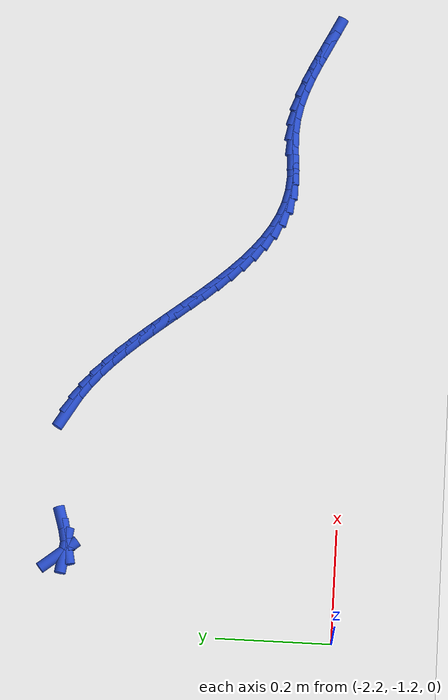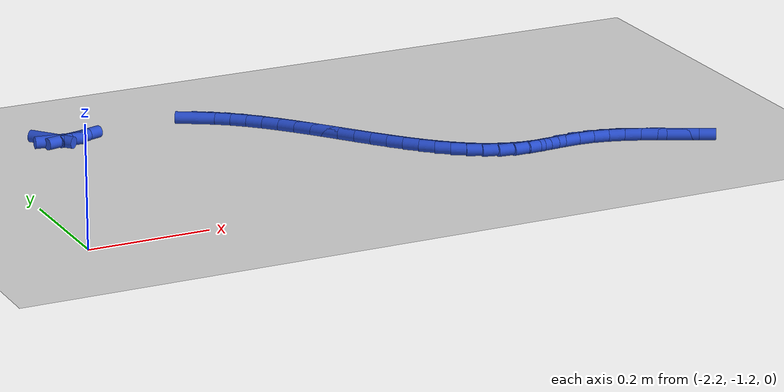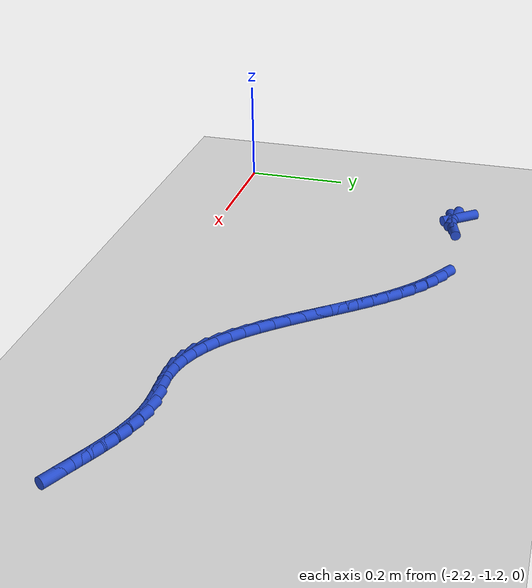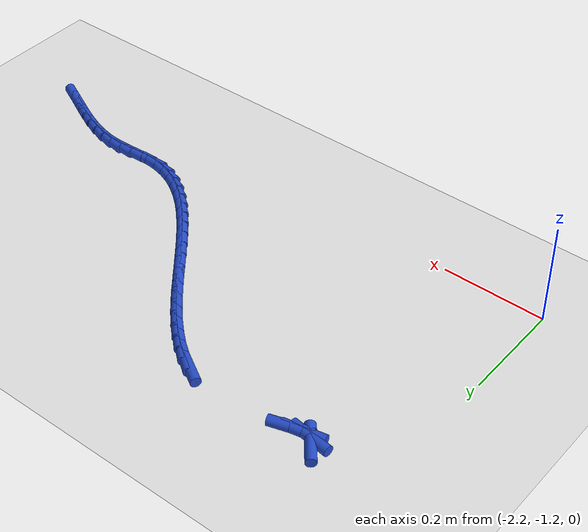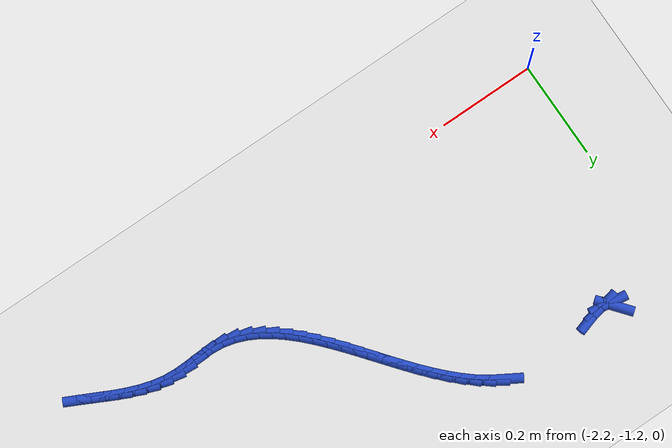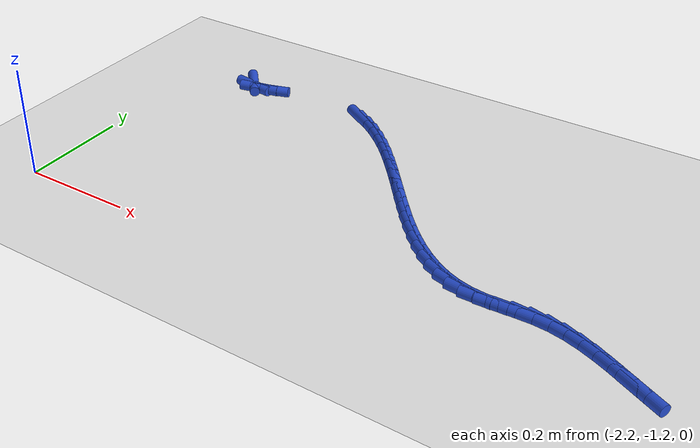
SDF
<sdf version="1.6">
 <world name="default">
  <model name="ground_plane">
   <static>1</static>
   <link name="link">
    <collision name="collision">
     <geometry><plane><normal>0 0 1</normal><size>100 100</size></plane></geometry>
     <surface><friction><ode><mu>100</mu><mu2>50</mu2></ode></friction></surface>
    </collision>
    <visual name="visual">
     <cast_shadows>0</cast_shadows>
     <geometry><plane><normal>0 0 1</normal><size>100 100</size></plane></geometry>
     <material>
      <script><uri>file://media/materials/scripts/gazebo.material</uri><name>Gazebo/WhiteGlow</name></script>
     </material>
    </visual>
   </link>
  </model>
  <model name="line">
   <link name="link_175">
    <pose>-2.069091002222434 -0.7225631608510045 0.01 0 1.57 -0.8910142239809765</pose>
    <collision name="collision">
     <geometry><cylinder><radius>0.01</radius><length>0.08</length></cylinder></geometry>
    </collision>
    <visual name="visual">
     <material>
      <script><name>Gazebo/Blue</name><uri>file://media/materials/scripts/gazebo.material</uri></script>
     </material>
     <geometry><cylinder><radius>0.01</radius><length>0.08</length></cylinder></geometry>
    </visual>
   </link>
   <link name="link_176">
    <pose>-2.061280213596934 -0.7322263780565038 0.01 0 1.57 -0.13727164159127814</pose>
    <collision name="collision">
     <geometry><cylinder><radius>0.01</radius><length>0.08</length></cylinder></geometry>
    </collision>
    <visual name="visual">
     <material>
      <script><name>Gazebo/Blue</name><uri>file://media/materials/scripts/gazebo.material</uri></script>
     </material>
     <geometry><cylinder><radius>0.01</radius><length>0.08</length></cylinder></geometry>
    </visual>
   </link>
   <link name="link_177">
    <pose>-2.046067383426169 -0.7343278847556267 0.01 0 1.57 0.199039119528573</pose>
    <collision name="collision">
     <geometry><cylinder><radius>0.01</radius><length>0.08</length></cylinder></geometry>
    </collision>
    <visual name="visual">
     <material>
      <script><name>Gazebo/Blue</name><uri>file://media/materials/scripts/gazebo.material</uri></script>
     </material>
     <geometry><cylinder><radius>0.01</radius><length>0.08</length></cylinder></geometry>
    </visual>
   </link>
   <link name="link_178">
    <pose>-2.024020899677037 -0.7298808914803425 0.01 0 1.57 0.29614040401055103</pose>
    <collision name="collision">
     <geometry><cylinder><radius>0.01</radius><length>0.08</length></cylinder></geometry>
    </collision>
    <visual name="visual">
     <material>
      <script><name>Gazebo/Blue</name><uri>file://media/materials/scripts/gazebo.material</uri></script>
     </material>
     <geometry><cylinder><radius>0.01</radius><length>0.08</length></cylinder></geometry>
    </visual>
   </link>
   <link name="link_186">
    <pose>-1.8107640060858232 -0.7272685316404454 0.01 0 1.57 -0.5370301628846509</pose>
    <collision name="collision">
     <geometry><cylinder><radius>0.01</radius><length>0.08</length></cylinder></geometry>
    </collision>
    <visual name="visual">
     <material>
      <script><name>Gazebo/Blue</name><uri>file://media/materials/scripts/gazebo.material</uri></script>
     </material>
     <geometry><cylinder><radius>0.01</radius><length>0.08</length></cylinder></geometry>
    </visual>
   </link>
   <link name="link_187">
    <pose>-1.7882883745338554 -0.7406505190353218 0.01 0 1.57 -0.6277333505533951</pose>
    <collision name="collision">
     <geometry><cylinder><radius>0.01</radius><length>0.08</length></cylinder></geometry>
    </collision>
    <visual name="visual">
     <material>
      <script><name>Gazebo/Blue</name><uri>file://media/materials/scripts/gazebo.material</uri></script>
     </material>
     <geometry><cylinder><radius>0.01</radius><length>0.08</length></cylinder></geometry>
    </visual>
   </link>
   <link name="link_188">
    <pose>-1.7666334416525689 -0.7563643957905298 0.01 0 1.57 -0.7030701546466752</pose>
    <collision name="collision">
     <geometry><cylinder><radius>0.01</radius><length>0.08</length></cylinder></geometry>
    </collision>
    <visual name="visual">
     <material>
      <script><name>Gazebo/Blue</name><uri>file://media/materials/scripts/gazebo.material</uri></script>
     </material>
     <geometry><cylinder><radius>0.01</radius><length>0.08</length></cylinder></geometry>
    </visual>
   </link>
   <link name="link_189">
    <pose>-1.745701196559582 -0.7741055259596078 0.01 0 1.57 -0.7641845336459393</pose>
    <collision name="collision">
     <geometry><cylinder><radius>0.01</radius><length>0.08</length></cylinder></geometry>
    </collision>
    <visual name="visual">
     <material>
      <script><name>Gazebo/Blue</name><uri>file://media/materials/scripts/gazebo.material</uri></script>
     </material>
     <geometry><cylinder><radius>0.01</radius><length>0.08</length></cylinder></geometry>
    </visual>
   </link>
   <link name="link_190">
    <pose>-1.7253936283725169 -0.793569273596094 0.01 0 1.57 -0.8124637551409584</pose>
    <collision name="collision">
     <geometry><cylinder><radius>0.01</radius><length>0.08</length></cylinder></geometry>
    </collision>
    <visual name="visual">
     <material>
      <script><name>Gazebo/Blue</name><uri>file://media/materials/scripts/gazebo.material</uri></script>
     </material>
     <geometry><cylinder><radius>0.01</radius><length>0.08</length></cylinder></geometry>
    </visual>
   </link>
   <link name="link_191">
    <pose>-1.7056127262089935 -0.8144510027535266 0.01 0 1.57 -0.8492290797008747</pose>
    <collision name="collision">
     <geometry><cylinder><radius>0.01</radius><length>0.08</length></cylinder></geometry>
    </collision>
    <visual name="visual">
     <material>
      <script><name>Gazebo/Blue</name><uri>file://media/materials/scripts/gazebo.material</uri></script>
     </material>
     <geometry><cylinder><radius>0.01</radius><length>0.08</length></cylinder></geometry>
    </visual>
   </link>
   <link name="link_192">
    <pose>-1.686260479186633 -0.8364460774854443 0.01 0 1.57 -0.8755807754301844</pose>
    <collision name="collision">
     <geometry><cylinder><radius>0.01</radius><length>0.08</length></cylinder></geometry>
    </collision>
    <visual name="visual">
     <material>
      <script><name>Gazebo/Blue</name><uri>file://media/materials/scripts/gazebo.material</uri></script>
     </material>
     <geometry><cylinder><radius>0.01</radius><length>0.08</length></cylinder></geometry>
    </visual>
   </link>
   <link name="link_193">
    <pose>-1.6672388764230568 -0.8592498618453859 0.01 0 1.57 -0.8923337911449971</pose>
    <collision name="collision">
     <geometry><cylinder><radius>0.01</radius><length>0.08</length></cylinder></geometry>
    </collision>
    <visual name="visual">
     <material>
      <script><name>Gazebo/Blue</name><uri>file://media/materials/scripts/gazebo.material</uri></script>
     </material>
     <geometry><cylinder><radius>0.01</radius><length>0.08</length></cylinder></geometry>
    </visual>
   </link>
   <link name="link_194">
    <pose>-1.648449907035885 -0.8825577198868891 0.01 0 1.57 -0.8999972501788079</pose>
    <collision name="collision">
     <geometry><cylinder><radius>0.01</radius><length>0.08</length></cylinder></geometry>
    </collision>
    <visual name="visual">
     <material>
      <script><name>Gazebo/Blue</name><uri>file://media/materials/scripts/gazebo.material</uri></script>
     </material>
     <geometry><cylinder><radius>0.01</radius><length>0.08</length></cylinder></geometry>
    </visual>
   </link>
   <link name="link_195">
    <pose>-1.6297955601427385 -0.9060650156634927 0.01 0 1.57 -0.8987618767656113</pose>
    <collision name="collision">
     <geometry><cylinder><radius>0.01</radius><length>0.08</length></cylinder></geometry>
    </collision>
    <visual name="visual">
     <material>
      <script><name>Gazebo/Blue</name><uri>file://media/materials/scripts/gazebo.material</uri></script>
     </material>
     <geometry><cylinder><radius>0.01</radius><length>0.08</length></cylinder></geometry>
    </visual>
   </link>
   <link name="link_196">
    <pose>-1.6111773046838422 -0.9294673984243756 0.01 0 1.57 -0.8884723662618812</pose>
    <collision name="collision">
     <geometry><cylinder><radius>0.01</radius><length>0.08</length></cylinder></geometry>
    </collision>
    <visual name="visual">
     <material>
      <script><name>Gazebo/Blue</name><uri>file://media/materials/scripts/gazebo.material</uri></script>
     </material>
     <geometry><cylinder><radius>0.01</radius><length>0.08</length></cylinder></geometry>
    </visual>
   </link>
   <link name="link_197">
    <pose>-1.592493910379872 -0.9524619973093315 0.01 0 1.57 -0.8686809860421518</pose>
    <collision name="collision">
     <geometry><cylinder><radius>0.01</radius><length>0.08</length></cylinder></geometry>
    </collision>
    <visual name="visual">
     <material>
      <script><name>Gazebo/Blue</name><uri>file://media/materials/scripts/gazebo.material</uri></script>
     </material>
     <geometry><cylinder><radius>0.01</radius><length>0.08</length></cylinder></geometry>
    </visual>
   </link>
   <link name="link_198">
    <pose>-1.5736432741314943 -0.9747464199957898 0.01 0 1.57 -0.8386227877579645</pose>
    <collision name="collision">
     <geometry><cylinder><radius>0.01</radius><length>0.08</length></cylinder></geometry>
    </collision>
    <visual name="visual">
     <material>
      <script><name>Gazebo/Blue</name><uri>file://media/materials/scripts/gazebo.material</uri></script>
     </material>
     <geometry><cylinder><radius>0.01</radius><length>0.08</length></cylinder></geometry>
    </visual>
   </link>
   <link name="link_199">
    <pose>-1.5545232923997476 -0.996018274402214 0.01 0 1.57 -0.7971969328952324</pose>
    <collision name="collision">
     <geometry><cylinder><radius>0.01</radius><length>0.08</length></cylinder></geometry>
    </collision>
    <visual name="visual">
     <material>
      <script><name>Gazebo/Blue</name><uri>file://media/materials/scripts/gazebo.material</uri></script>
     </material>
     <geometry><cylinder><radius>0.01</radius><length>0.08</length></cylinder></geometry>
    </visual>
   </link>
   <link name="link_200">
    <pose>-1.5350318616456682 -1.0159751684470677 0.01 0 1.57 -0.7429888887038091</pose>
    <collision name="collision">
     <geometry><cylinder><radius>0.01</radius><length>0.08</length></cylinder></geometry>
    </collision>
    <visual name="visual">
     <material>
      <script><name>Gazebo/Blue</name><uri>file://media/materials/scripts/gazebo.material</uri></script>
     </material>
     <geometry><cylinder><radius>0.01</radius><length>0.08</length></cylinder></geometry>
    </visual>
   </link>
   <link name="link_201">
    <pose>-1.5150668783302943 -1.0343147100488141 0.01 0 1.57 -0.6743633951669156</pose>
    <collision name="collision">
     <geometry><cylinder><radius>0.01</radius><length>0.08</length></cylinder></geometry>
    </collision>
    <visual name="visual">
     <material>
      <script><name>Gazebo/Blue</name><uri>file://media/materials/scripts/gazebo.material</uri></script>
     </material>
     <geometry><cylinder><radius>0.01</radius><length>0.08</length></cylinder></geometry>
    </visual>
   </link>
   <link name="link_202">
    <pose>-1.4945262389146619 -1.0507345071259175 0.01 0 1.57 -0.5896993148361361</pose>
    <collision name="collision">
     <geometry><cylinder><radius>0.01</radius><length>0.08</length></cylinder></geometry>
    </collision>
    <visual name="visual">
     <material>
      <script><name>Gazebo/Blue</name><uri>file://media/materials/scripts/gazebo.material</uri></script>
     </material>
     <geometry><cylinder><radius>0.01</radius><length>0.08</length></cylinder></geometry>
    </visual>
   </link>
   <link name="link_203">
    <pose>-1.473307839859809 -1.064932167596841 0.01 0 1.57 -0.48785717051194816</pose>
    <collision name="collision">
     <geometry><cylinder><radius>0.01</radius><length>0.08</length></cylinder></geometry>
    </collision>
    <visual name="visual">
     <material>
      <script><name>Gazebo/Blue</name><uri>file://media/materials/scripts/gazebo.material</uri></script>
     </material>
     <geometry><cylinder><radius>0.01</radius><length>0.08</length></cylinder></geometry>
    </visual>
   </link>
   <link name="link_204">
    <pose>-1.4513095776267728 -1.0766052993800481 0.01 0 1.57 -0.3689287164251612</pose>
    <collision name="collision">
     <geometry><cylinder><radius>0.01</radius><length>0.08</length></cylinder></geometry>
    </collision>
    <visual name="visual">
     <material>
      <script><name>Gazebo/Blue</name><uri>file://media/materials/scripts/gazebo.material</uri></script>
     </material>
     <geometry><cylinder><radius>0.01</radius><length>0.08</length></cylinder></geometry>
    </visual>
   </link>
   <link name="link_205">
    <pose>-1.4284293486765907 -1.0854515103940026 0.01 0 1.57 -0.2351275810674272</pose>
    <collision name="collision">
     <geometry><cylinder><radius>0.01</radius><length>0.08</length></cylinder></geometry>
    </collision>
    <visual name="visual">
     <material>
      <script><name>Gazebo/Blue</name><uri>file://media/materials/scripts/gazebo.material</uri></script>
     </material>
     <geometry><cylinder><radius>0.01</radius><length>0.08</length></cylinder></geometry>
    </visual>
   </link>
   <link name="link_206">
    <pose>-1.4045650494702997 -1.0911684085571676 0.01 0 1.57 -0.09244158246331237</pose>
    <collision name="collision">
     <geometry><cylinder><radius>0.01</radius><length>0.08</length></cylinder></geometry>
    </collision>
    <visual name="visual">
     <material>
      <script><name>Gazebo/Blue</name><uri>file://media/materials/scripts/gazebo.material</uri></script>
     </material>
     <geometry><cylinder><radius>0.01</radius><length>0.08</length></cylinder></geometry>
    </visual>
   </link>
   <link name="link_207">
    <pose>-1.379621179778586 -1.0934808500479378 0.01 0 1.57 0.017345917219649315</pose>
    <collision name="collision">
     <geometry><cylinder><radius>0.01</radius><length>0.08</length></cylinder></geometry>
    </collision>
    <visual name="visual">
     <material>
      <script><name>Gazebo/Blue</name><uri>file://media/materials/scripts/gazebo.material</uri></script>
     </material>
     <geometry><cylinder><radius>0.01</radius><length>0.08</length></cylinder></geometry>
    </visual>
   </link>
   <link name="link_208">
    <pose>-1.353724685882014 -1.0930316065513708 0.01 0 1.57 0.054824001406240545</pose>
    <collision name="collision">
     <geometry><cylinder><radius>0.01</radius><length>0.08</length></cylinder></geometry>
    </collision>
    <visual name="visual">
     <material>
      <script><name>Gazebo/Blue</name><uri>file://media/materials/scripts/gazebo.material</uri></script>
     </material>
     <geometry><cylinder><radius>0.01</radius><length>0.08</length></cylinder></geometry>
    </visual>
   </link>
   <link name="link_209">
    <pose>-1.3272730900904368 -1.0915799695538482 0.01 0 1.57 0.02358437514643406</pose>
    <collision name="collision">
     <geometry><cylinder><radius>0.01</radius><length>0.08</length></cylinder></geometry>
    </collision>
    <visual name="visual">
     <material>
      <script><name>Gazebo/Blue</name><uri>file://media/materials/scripts/gazebo.material</uri></script>
     </material>
     <geometry><cylinder><radius>0.01</radius><length>0.08</length></cylinder></geometry>
    </visual>
   </link>
   <link name="link_210">
    <pose>-1.300680259837726 -1.0909526779600311 0.01 0 1.57 -0.0744316381715391</pose>
    <collision name="collision">
     <geometry><cylinder><radius>0.01</radius><length>0.08</length></cylinder></geometry>
    </collision>
    <visual name="visual">
     <material>
      <script><name>Gazebo/Blue</name><uri>file://media/materials/scripts/gazebo.material</uri></script>
     </material>
     <geometry><cylinder><radius>0.01</radius><length>0.08</length></cylinder></geometry>
    </visual>
   </link>
   <link name="link_211">
    <pose>-1.274348214695353 -1.0929162426508139 0.01 0 1.57 -0.1951742557377943</pose>
    <collision name="collision">
     <geometry><cylinder><radius>0.01</radius><length>0.08</length></cylinder></geometry>
    </collision>
    <visual name="visual">
     <material>
      <script><name>Gazebo/Blue</name><uri>file://media/materials/scripts/gazebo.material</uri></script>
     </material>
     <geometry><cylinder><radius>0.01</radius><length>0.08</length></cylinder></geometry>
    </visual>
   </link>
   <link name="link_212">
    <pose>-1.2484429727030923 -1.0980374723685922 0.01 0 1.57 -0.2943975338040651</pose>
    <collision name="collision">
     <geometry><cylinder><radius>0.01</radius><length>0.08</length></cylinder></geometry>
    </collision>
    <visual name="visual">
     <material>
      <script><name>Gazebo/Blue</name><uri>file://media/materials/scripts/gazebo.material</uri></script>
     </material>
     <geometry><cylinder><radius>0.01</radius><length>0.08</length></cylinder></geometry>
    </visual>
   </link>
   <link name="link_213">
    <pose>-1.222913205896414 -1.105778308170016 0.01 0 1.57 -0.3700581132366887</pose>
    <collision name="collision">
     <geometry><cylinder><radius>0.01</radius><length>0.08</length></cylinder></geometry>
    </collision>
    <visual name="visual">
     <material>
      <script><name>Gazebo/Blue</name><uri>file://media/materials/scripts/gazebo.material</uri></script>
     </material>
     <geometry><cylinder><radius>0.01</radius><length>0.08</length></cylinder></geometry>
    </visual>
   </link>
   <link name="link_214">
    <pose>-1.1976994774870744 -1.1155594703065985 0.01 0 1.57 -0.4232371089794154</pose>
    <collision name="collision">
     <geometry><cylinder><radius>0.01</radius><length>0.08</length></cylinder></geometry>
    </collision>
    <visual name="visual">
     <material>
      <script><name>Gazebo/Blue</name><uri>file://media/materials/scripts/gazebo.material</uri></script>
     </material>
     <geometry><cylinder><radius>0.01</radius><length>0.08</length></cylinder></geometry>
    </visual>
   </link>
   <link name="link_215">
    <pose>-1.1727423506868286 -1.1268016790298518 0.01 0 1.57 -0.45534185471423394</pose>
    <collision name="collision">
     <geometry><cylinder><radius>0.01</radius><length>0.08</length></cylinder></geometry>
    </collision>
    <visual name="visual">
     <material>
      <script><name>Gazebo/Blue</name><uri>file://media/materials/scripts/gazebo.material</uri></script>
     </material>
     <geometry><cylinder><radius>0.01</radius><length>0.08</length></cylinder></geometry>
    </visual>
   </link>
   <link name="link_216">
    <pose>-1.1479823887074345 -1.1389256545912891 0.01 0 1.57 -0.46738827380761055</pose>
    <collision name="collision">
     <geometry><cylinder><radius>0.01</radius><length>0.08</length></cylinder></geometry>
    </collision>
    <visual name="visual">
     <material>
      <script><name>Gazebo/Blue</name><uri>file://media/materials/scripts/gazebo.material</uri></script>
     </material>
     <geometry><cylinder><radius>0.01</radius><length>0.08</length></cylinder></geometry>
    </visual>
   </link>
   <link name="link_217">
    <pose>-1.1233601547606469 -1.1513521172424235 0.01 0 1.57 -0.45965330492853634</pose>
    <collision name="collision">
     <geometry><cylinder><radius>0.01</radius><length>0.08</length></cylinder></geometry>
    </collision>
    <visual name="visual">
     <material>
      <script><name>Gazebo/Blue</name><uri>file://media/materials/scripts/gazebo.material</uri></script>
     </material>
     <geometry><cylinder><radius>0.01</radius><length>0.08</length></cylinder></geometry>
    </visual>
   </link>
  </model>
 </world>
</sdf>
